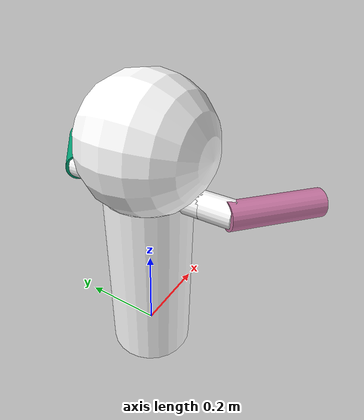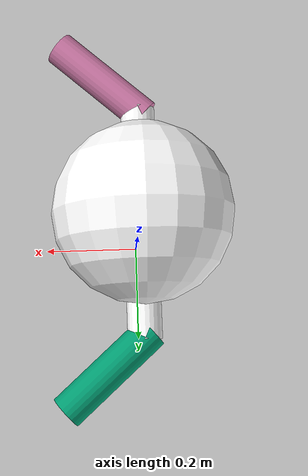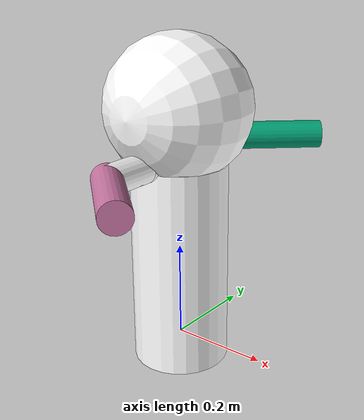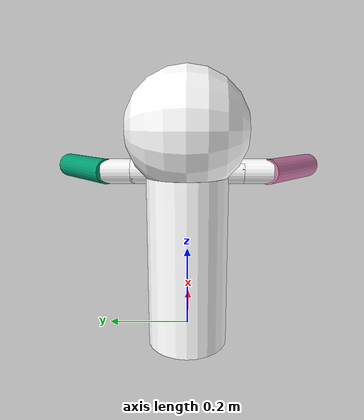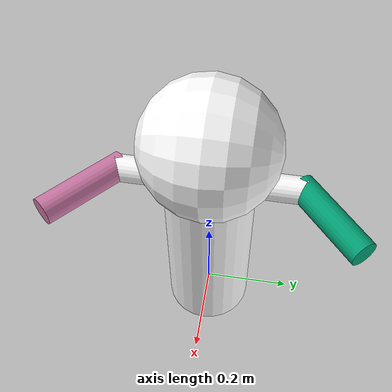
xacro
<?xml version="1.0"?>
<robot xmlns:xacro="http://www.ros.org/wiki/xacro" name="qtrobot">

	<xacro:property name="radius_two" value="0.02" />
	<xacro:property name="radius_three" value="0.03" />
	<xacro:property name="elbow_roll_length" value="0.04" />
	<xacro:property name="shoulder_pitch_length" value="0.05" />
	<xacro:property name="shoulder_roll_length" value="0.1" />
	<xacro:property name="hand_length" value="0.2" />

	<xacro:macro name="elbow_origin">
	    <origin rpy="0 1.5708 0" xyz="0 0 0"/>
	</xacro:macro>

	<xacro:macro name="shoulder_origin">
		<origin rpy="1.5708 0 0" xyz="0 0.03 0"/>
	</xacro:macro>

	<xacro:macro name="hand_origin">
	    <origin rpy="0 1.5708 0" xyz="-0.1 0 0"/>
	</xacro:macro>

	<xacro:macro name="shoulderPitch_link" params="position">
	  <link name="${position}ShoulderPitch">
	    <visual>
	      <geometry>
	        <cylinder length="${shoulder_pitch_length}" radius="${radius_three}"/>
	      </geometry>
	      <xacro:shoulder_origin />
	      <material name="white"/>
	    </visual>
	  </link>
	</xacro:macro>

	<xacro:macro name="shoulderRoll_link" params="position">
		<link name="${position}ShoulderRoll">
			<visual>
			  	<geometry>
			    	<cylinder length="${shoulder_roll_length}" radius="${radius_three}"/>
			  	</geometry>
			    <xacro:shoulder_origin />
			  	<material name="white"/>
			</visual>
		</link>
	</xacro:macro>

	<xacro:macro name="elbowRoll_link" params="position">
		<link name="${position}ElbowRoll">
			<visual>
			  	<geometry>
			    	<cylinder length="${elbow_roll_length}" radius="${radius_two}"/>
			  	</geometry>
			  	<xacro:elbow_origin />
			  	<material name="white"/>
			</visual>
		</link>
	</xacro:macro>

	<xacro:macro name="hand_link" params="position">
		<link name="${position}Hand">
		    <visual>
		      	<geometry>
		       		<cylinder length="${hand_length}" radius="${radius_three}"/>
		      	</geometry>
		      	<xacro:hand_origin />
		    </visual>
		</link>
	</xacro:macro>

	<material name="white">
		<color rgba="1 1 1 1"/>
	</material>

	<link name="base_link">
		<visual>
		  	<geometry>
		    	<cylinder length="0.43" radius="0.10"/>
		 	</geometry>
		  	<origin rpy="0 0 0" xyz="0 0 0.1685"/>
		  	<material name="white"/>
		</visual>
	</link>

	<!-- Head -->
	<link name="HeadYaw">
		<visual>
		  	<geometry>
		    	<cylinder length="0.04" radius="${radius_two}"/>
		  	</geometry>
		  	<origin rpy="0 0 0" xyz="0 0 0"/>
		  	<material name="white"/>
		</visual>
	</link>

	<link name="HeadPitch">
		<visual>
			<geometry>
		    	<sphere radius="0.15"/>
		  	</geometry>
		  	<origin rpy="1.5708 0 0" xyz="0 0 0.06"/>
		  	<material name="white"/>
		</visual>
	</link>

	<joint name="HeadYaw" type="revolute">
		<parent link="base_link"/>
		<child link="HeadYaw"/>
		<origin rpy="0 0 0" xyz="0 0 0.338"/>
		<axis xyz="0 0 1"/>
		<limit effort="1000" lower="-1.0472" upper="1.0472" velocity="100"/>
	</joint>

	<joint name="HeadPitch" type="revolute">
		<parent link="HeadYaw"/>
		<child link="HeadPitch"/>
		<origin rpy="0 0 0" xyz="0 0 0.0962"/>
		<axis xyz="0 1 0"/>
		<limit effort="1000" lower="-0.261799" upper="0.436332" velocity="30"/>
	</joint>

	<!-- Right Arm -->
	<xacro:shoulderPitch_link position="Right"/>
	<xacro:shoulderRoll_link position="Right"/>
	<xacro:elbowRoll_link position="Right"/>
	<xacro:hand_link position="Right"/>

	  <joint name="RightShoulderPitch" type="revolute">
	    <parent link="base_link"/>
	    <child link="RightShoulderPitch"/>
	    <origin rpy="3.14159 0 0" xyz="0 -0.08 0.396"/>
	    <axis xyz="0 1 0"/>
	    <limit effort="1000" lower="-2.44346" upper="2.44346" velocity="100"/>
	  </joint>

	  <joint name="RightShoulderRoll" type="revolute">
	    <parent link="RightShoulderPitch"/>
	    <child link="RightShoulderRoll"/>
	    <origin rpy="0 -1.5708 0" xyz="0 0.0445 0"/>
	    <axis xyz="1 0 0"/>
	    <limit effort="1000" lower="-1.309" upper="0.122173" velocity="100"/>
	  </joint>

	  <joint name="RightElbowRoll" type="revolute">
	    <parent link="RightShoulderRoll"/>
	    <child link="RightElbowRoll"/>
	    <origin rpy="0 0 0" xyz="0 0.07708 0"/> -->
	    <axis xyz="1 0 0"/>
	    <limit effort="1000" lower="-1.5708" upper="-0.122173" velocity="100"/>
	  </joint>

	  <joint name="RightHand" type="fixed">
	    <parent link="RightElbowRoll"/>
	    <child link="RightHand"/>
	    <origin rpy="-1.5708 0 1.5708" xyz="0 0.184 0"/>
	  </joint>

	<!-- Left Arm -->
	<xacro:shoulderPitch_link position="Left"/>
	<xacro:shoulderRoll_link position="Left"/>
	<xacro:elbowRoll_link position="Left"/>
	<xacro:hand_link position="Left"/>

	<joint name="LeftShoulderPitch" type="revolute">
	    <parent link="base_link"/>
	    <child link="LeftShoulderPitch"/>
	    <origin rpy="0 0 0" xyz="0 0.08 0.396"/> -->
	    <axis xyz="0 1 0"/>
	    <limit effort="1000" lower="-2.44346" upper="2.44346" velocity="100"/>
	</joint>

	<joint name="LeftShoulderRoll" type="revolute">
	    <parent link="LeftShoulderPitch"/>
	    <child link="LeftShoulderRoll"/>
	    <origin rpy="0 -1.5708 0" xyz="0 0.0445 0"/>
	    <axis xyz="1 0 0"/>
	    <limit effort="1000" lower="-1.309" upper="0.122173" velocity="100"/>
	</joint>

	<joint name="LeftElbowRoll" type="revolute">
	    <parent link="LeftShoulderRoll"/>
	    <child link="LeftElbowRoll"/>
	    <origin rpy="0 0 0" xyz="0 0.07708 0"/>
	    <axis xyz="1 0 0"/>
	    <limit effort="1000" lower="-1.5708" upper="-0.122173" velocity="100"/>
	</joint>

	<joint name="LeftHand" type="fixed">
	    <parent link="LeftElbowRoll"/>
	    <child link="LeftHand"/>
	    <origin rpy="1.5708 0 1.5708" xyz="0 0.184 0"/>
	</joint>

</robot>
